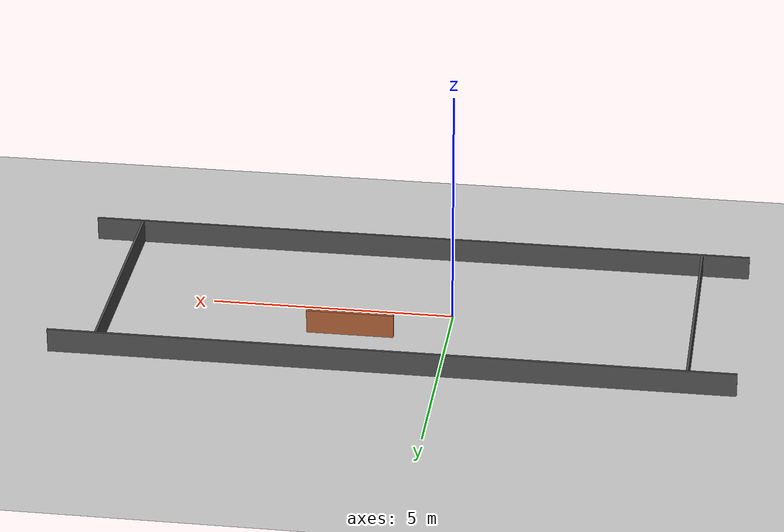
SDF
<?xml version="1.0" ?>
<sdf version="1.6">
  <world name="curriculum_s2_one_obstacle">
    <plugin name="gazebo_ros_state" filename="libgazebo_ros_state.so">
      <update_rate>50.0</update_rate>
    </plugin>
    <include>
      <uri>model://sun</uri>
    </include>
    <include>
      <uri>model://ground_plane</uri>
    </include>
    <model name="outer_bottom">
      <static>true</static>
      <pose>1.0 -2.5 0.25 0 0 0</pose>
      <link name="link">
        <collision name="c">
          <geometry><box><size>14.0 0.05 0.5</size></box></geometry>
        </collision>
        <visual name="v">
          <geometry><box><size>14.0 0.05 0.5</size></box></geometry>
          <material>
            <ambient>0.3 0.3 0.3 1</ambient>
            <diffuse>0.3 0.3 0.3 1</diffuse>
          </material>
        </visual>
      </link>
    </model>
    <model name="outer_top">
      <static>true</static>
      <pose>1.0 2.5 0.25 0 0 0</pose>
      <link name="link">
        <collision name="c">
          <geometry><box><size>14.0 0.05 0.5</size></box></geometry>
        </collision>
        <visual name="v">
          <geometry><box><size>14.0 0.05 0.5</size></box></geometry>
          <material>
            <ambient>0.3 0.3 0.3 1</ambient>
            <diffuse>0.3 0.3 0.3 1</diffuse>
          </material>
        </visual>
      </link>
    </model>
    <model name="outer_left">
      <static>true</static>
      <pose>-5.0 0.0 0.25 0 0 0</pose>
      <link name="link">
        <collision name="c">
          <geometry><box><size>0.05 5.0 0.5</size></box></geometry>
        </collision>
        <visual name="v">
          <geometry><box><size>0.05 5.0 0.5</size></box></geometry>
          <material>
            <ambient>0.3 0.3 0.3 1</ambient>
            <diffuse>0.3 0.3 0.3 1</diffuse>
          </material>
        </visual>
      </link>
    </model>
    <model name="outer_right">
      <static>true</static>
      <pose>7.0 0.0 0.25 0 0 0</pose>
      <link name="link">
        <collision name="c">
          <geometry><box><size>0.05 5.0 0.5</size></box></geometry>
        </collision>
        <visual name="v">
          <geometry><box><size>0.05 5.0 0.5</size></box></geometry>
          <material>
            <ambient>0.3 0.3 0.3 1</ambient>
            <diffuse>0.3 0.3 0.3 1</diffuse>
          </material>
        </visual>
      </link>
    </model>
    <model name="center_obstacle">
      <static>true</static>
      <pose>2.0 1.0 0.25 0 0 0</pose>
      <link name="link">
        <collision name="c">
          <geometry><box><size>1.8 0.08 0.5</size></box></geometry>
        </collision>
        <visual name="v">
          <geometry><box><size>1.8 0.08 0.5</size></box></geometry>
          <material>
            <ambient>0.65 0.35 0.2 1</ambient>
            <diffuse>0.65 0.35 0.2 1</diffuse>
          </material>
        </visual>
      </link>
    </model>
  </world>
</sdf>
